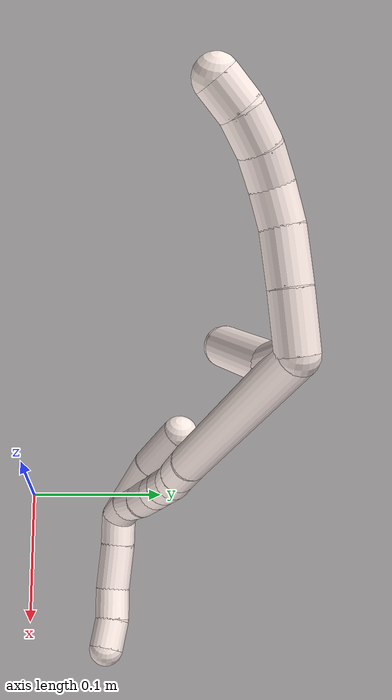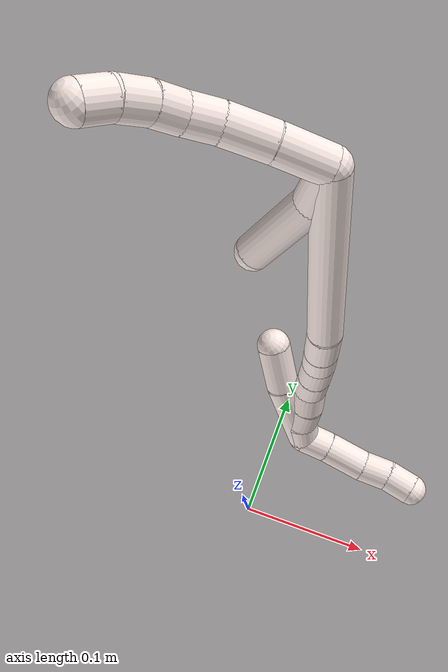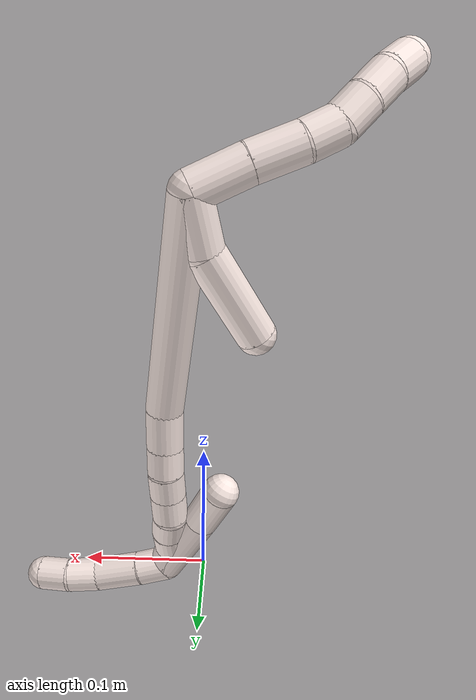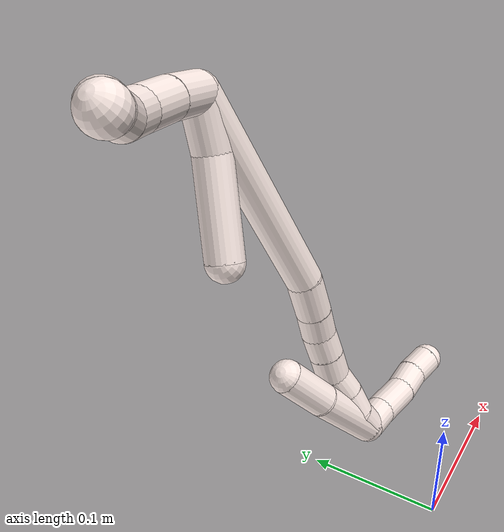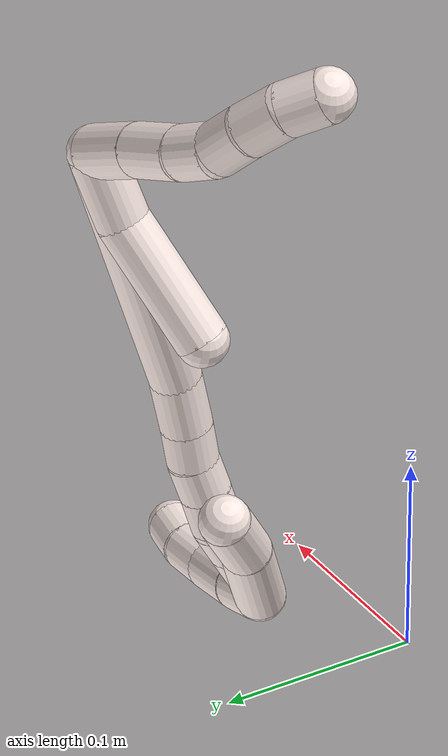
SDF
<sdf version="1.7">
 <world name="default">
  <model name="11">
   <static>0</static>
   <link name="11">
    <collision name="collision-cylinder-e_1_2_8">
     <pose>-0.010458 -0.002604 0.01388 0.185434 -0.637454 -0.061346</pose>
     <geometry><cylinder><radius>0.0125</radius><length>0.035146</length></cylinder></geometry>
     <surface>
      <friction><ode><mu>1.16</mu><mu2>1.16</mu2><slip1>0</slip1><slip2>0</slip2></ode></friction>
      <contact><ode><kp>1e+06</kp><kd>1</kd><max_vel>0</max_vel><min_depth>0.001</min_depth></ode></contact>
     </surface>
    </collision>
    <visual name="visual-cylinder-e_1_2_8">
     <pose>-0.010458 -0.002604 0.01388 0.185434 -0.637454 -0.061346</pose>
     <geometry><cylinder><radius>0.0125</radius><length>0.035146</length></cylinder></geometry>
     <material><ambient>1 0.933333 0.909804 1</ambient></material>
    </visual>
    <collision name="collision-cylinder-e_2_8_9">
     <pose>-0.031045 -0.007659 0.039452 0.206723 -0.703179 -0.076067</pose>
     <geometry><cylinder><radius>0.0125</radius><length>0.031324</length></cylinder></geometry>
     <surface>
      <friction><ode><mu>1.16</mu><mu2>1.16</mu2><slip1>0</slip1><slip2>0</slip2></ode></friction>
      <contact><ode><kp>1e+06</kp><kd>1</kd><max_vel>0</max_vel><min_depth>0.001</min_depth></ode></contact>
     </surface>
    </collision>
    <visual name="visual-cylinder-e_2_8_9">
     <pose>-0.031045 -0.007659 0.039452 0.206723 -0.703179 -0.076067</pose>
     <geometry><cylinder><radius>0.0125</radius><length>0.031324</length></cylinder></geometry>
     <material><ambient>1 0.933333 0.909804 1</ambient></material>
    </visual>
    <collision name="collision-cylinder-e_3_9_10">
     <pose>-0.047467 -0.013282 0.059311 0.370342 -0.62306 -0.120492</pose>
     <geometry><cylinder><radius>0.0125</radius><length>0.021576</length></cylinder></geometry>
     <surface>
      <friction><ode><mu>1.16</mu><mu2>1.16</mu2><slip1>0</slip1><slip2>0</slip2></ode></friction>
      <contact><ode><kp>1e+06</kp><kd>1</kd><max_vel>0</max_vel><min_depth>0.001</min_depth></ode></contact>
     </surface>
    </collision>
    <visual name="visual-cylinder-e_3_9_10">
     <pose>-0.047467 -0.013282 0.059311 0.370342 -0.62306 -0.120492</pose>
     <geometry><cylinder><radius>0.0125</radius><length>0.021576</length></cylinder></geometry>
     <material><ambient>1 0.933333 0.909804 1</ambient></material>
    </visual>
    <collision name="collision-cylinder-e_4_10_11">
     <pose>-0.056591 -0.020478 0.076356 0.425571 -0.28244 -0.061413</pose>
     <geometry><cylinder><radius>0.0125</radius><length>0.020301</length></cylinder></geometry>
     <surface>
      <friction><ode><mu>1.16</mu><mu2>1.16</mu2><slip1>0</slip1><slip2>0</slip2></ode></friction>
      <contact><ode><kp>1e+06</kp><kd>1</kd><max_vel>0</max_vel><min_depth>0.001</min_depth></ode></contact>
     </surface>
    </collision>
    <visual name="visual-cylinder-e_4_10_11">
     <pose>-0.056591 -0.020478 0.076356 0.425571 -0.28244 -0.061413</pose>
     <geometry><cylinder><radius>0.0125</radius><length>0.020301</length></cylinder></geometry>
     <material><ambient>1 0.933333 0.909804 1</ambient></material>
    </visual>
    <collision name="collision-cylinder-e_5_11_12">
     <pose>-0.062484 -0.030219 0.093884 0.584047 -0.287343 -0.086925</pose>
     <geometry><cylinder><radius>0.0125</radius><length>0.021622</length></cylinder></geometry>
     <surface>
      <friction><ode><mu>1.16</mu><mu2>1.16</mu2><slip1>0</slip1><slip2>0</slip2></ode></friction>
      <contact><ode><kp>1e+06</kp><kd>1</kd><max_vel>0</max_vel><min_depth>0.001</min_depth></ode></contact>
     </surface>
    </collision>
    <visual name="visual-cylinder-e_5_11_12">
     <pose>-0.062484 -0.030219 0.093884 0.584047 -0.287343 -0.086925</pose>
     <geometry><cylinder><radius>0.0125</radius><length>0.021622</length></cylinder></geometry>
     <material><ambient>1 0.933333 0.909804 1</ambient></material>
    </visual>
    <collision name="collision-cylinder-e_6_12_6">
     <pose>-0.06928 -0.042624 0.108988 0.803187 -0.381811 -0.163777</pose>
     <geometry><cylinder><radius>0.0125</radius><length>0.020032</length></cylinder></geometry>
     <surface>
      <friction><ode><mu>1.16</mu><mu2>1.16</mu2><slip1>0</slip1><slip2>0</slip2></ode></friction>
      <contact><ode><kp>1e+06</kp><kd>1</kd><max_vel>0</max_vel><min_depth>0.001</min_depth></ode></contact>
     </surface>
    </collision>
    <visual name="visual-cylinder-e_6_12_6">
     <pose>-0.06928 -0.042624 0.108988 0.803187 -0.381811 -0.163777</pose>
     <geometry><cylinder><radius>0.0125</radius><length>0.020032</length></cylinder></geometry>
     <material><ambient>1 0.933333 0.909804 1</ambient></material>
    </visual>
    <collision name="collision-cylinder-e_1_2_13">
     <pose>-0.011786 -0.002851 -0.013172 2.92841 -0.718545 -2.58651</pose>
     <geometry><cylinder><radius>0.0125</radius><length>0.035808</length></cylinder></geometry>
     <surface>
      <friction><ode><mu>1.16</mu><mu2>1.16</mu2><slip1>0</slip1><slip2>0</slip2></ode></friction>
      <contact><ode><kp>1e+06</kp><kd>1</kd><max_vel>0</max_vel><min_depth>0.001</min_depth></ode></contact>
     </surface>
    </collision>
    <visual name="visual-cylinder-e_1_2_13">
     <pose>-0.011786 -0.002851 -0.013172 2.92841 -0.718545 -2.58651</pose>
     <geometry><cylinder><radius>0.0125</radius><length>0.035808</length></cylinder></geometry>
     <material><ambient>1 0.933333 0.909804 1</ambient></material>
    </visual>
    <collision name="collision-cylinder-e_2_13_5">
     <pose>-0.05039 -0.013437 -0.042192 2.6876 -0.989127 -2.33224</pose>
     <geometry><cylinder><radius>0.0125</radius><length>0.064192</length></cylinder></geometry>
     <surface>
      <friction><ode><mu>1.16</mu><mu2>1.16</mu2><slip1>0</slip1><slip2>0</slip2></ode></friction>
      <contact><ode><kp>1e+06</kp><kd>1</kd><max_vel>0</max_vel><min_depth>0.001</min_depth></ode></contact>
     </surface>
    </collision>
    <visual name="visual-cylinder-e_2_13_5">
     <pose>-0.05039 -0.013437 -0.042192 2.6876 -0.989127 -2.33224</pose>
     <geometry><cylinder><radius>0.0125</radius><length>0.064192</length></cylinder></geometry>
     <material><ambient>1 0.933333 0.909804 1</ambient></material>
    </visual>
    <collision name="collision-cylinder-e_1_2_14">
     <pose>-0.027494 -0.017984 -0.067718 2.88201 -0.373941 -1.93369</pose>
     <geometry><cylinder><radius>0.0125</radius><length>0.150534</length></cylinder></geometry>
     <surface>
      <friction><ode><mu>1.16</mu><mu2>1.16</mu2><slip1>0</slip1><slip2>0</slip2></ode></friction>
      <contact><ode><kp>1e+06</kp><kd>1</kd><max_vel>0</max_vel><min_depth>0.001</min_depth></ode></contact>
     </surface>
    </collision>
    <visual name="visual-cylinder-e_1_2_14">
     <pose>-0.027494 -0.017984 -0.067718 2.88201 -0.373941 -1.93369</pose>
     <geometry><cylinder><radius>0.0125</radius><length>0.150534</length></cylinder></geometry>
     <material><ambient>1 0.933333 0.909804 1</ambient></material>
    </visual>
    <collision name="collision-cylinder-e_2_14_15">
     <pose>-0.061855 -0.037473 -0.148014 3.02251 -0.496774 -2.67988</pose>
     <geometry><cylinder><radius>0.0125</radius><length>0.028816</length></cylinder></geometry>
     <surface>
      <friction><ode><mu>1.16</mu><mu2>1.16</mu2><slip1>0</slip1><slip2>0</slip2></ode></friction>
      <contact><ode><kp>1e+06</kp><kd>1</kd><max_vel>0</max_vel><min_depth>0.001</min_depth></ode></contact>
     </surface>
    </collision>
    <visual name="visual-cylinder-e_2_14_15">
     <pose>-0.061855 -0.037473 -0.148014 3.02251 -0.496774 -2.67988</pose>
     <geometry><cylinder><radius>0.0125</radius><length>0.028816</length></cylinder></geometry>
     <material><ambient>1 0.933333 0.909804 1</ambient></material>
    </visual>
    <collision name="collision-cylinder-e_3_15_16">
     <pose>-0.073662 -0.039611 -0.169432 3.0701 -0.508414 -2.86804</pose>
     <geometry><cylinder><radius>0.0125</radius><length>0.020296</length></cylinder></geometry>
     <surface>
      <friction><ode><mu>1.16</mu><mu2>1.16</mu2><slip1>0</slip1><slip2>0</slip2></ode></friction>
      <contact><ode><kp>1e+06</kp><kd>1</kd><max_vel>0</max_vel><min_depth>0.001</min_depth></ode></contact>
     </surface>
    </collision>
    <visual name="visual-cylinder-e_3_15_16">
     <pose>-0.073662 -0.039611 -0.169432 3.0701 -0.508414 -2.86804</pose>
     <geometry><cylinder><radius>0.0125</radius><length>0.020296</length></cylinder></geometry>
     <material><ambient>1 0.933333 0.909804 1</ambient></material>
    </visual>
    <collision name="collision-cylinder-e_4_16_17">
     <pose>-0.083818 -0.042259 -0.186584 2.90377 -0.547759 -2.33738</pose>
     <geometry><cylinder><radius>0.0125</radius><length>0.020031</length></cylinder></geometry>
     <surface>
      <friction><ode><mu>1.16</mu><mu2>1.16</mu2><slip1>0</slip1><slip2>0</slip2></ode></friction>
      <contact><ode><kp>1e+06</kp><kd>1</kd><max_vel>0</max_vel><min_depth>0.001</min_depth></ode></contact>
     </surface>
    </collision>
    <visual name="visual-cylinder-e_4_16_17">
     <pose>-0.083818 -0.042259 -0.186584 2.90377 -0.547759 -2.33738</pose>
     <geometry><cylinder><radius>0.0125</radius><length>0.020031</length></cylinder></geometry>
     <material><ambient>1 0.933333 0.909804 1</ambient></material>
    </visual>
    <collision name="collision-cylinder-e_5_17_18">
     <pose>-0.094392 -0.046019 -0.203326 2.93748 -0.556614 -2.45324</pose>
     <geometry><cylinder><radius>0.0125</radius><length>0.020285</length></cylinder></geometry>
     <surface>
      <friction><ode><mu>1.16</mu><mu2>1.16</mu2><slip1>0</slip1><slip2>0</slip2></ode></friction>
      <contact><ode><kp>1e+06</kp><kd>1</kd><max_vel>0</max_vel><min_depth>0.001</min_depth></ode></contact>
     </surface>
    </collision>
    <visual name="visual-cylinder-e_5_17_18">
     <pose>-0.094392 -0.046019 -0.203326 2.93748 -0.556614 -2.45324</pose>
     <geometry><cylinder><radius>0.0125</radius><length>0.020285</length></cylinder></geometry>
     <material><ambient>1 0.933333 0.909804 1</ambient></material>
    </visual>
    <collision name="collision-cylinder-e_6_18_19">
     <pose>-0.103551 -0.051829 -0.220088 2.68756 -0.389206 -1.41274</pose>
     <geometry><cylinder><radius>0.0125</radius><length>0.020034</length></cylinder></geometry>
     <surface>
      <friction><ode><mu>1.16</mu><mu2>1.16</mu2><slip1>0</slip1><slip2>0</slip2></ode></friction>
      <contact><ode><kp>1e+06</kp><kd>1</kd><max_vel>0</max_vel><min_depth>0.001</min_depth></ode></contact>
     </surface>
    </collision>
    <visual name="visual-cylinder-e_6_18_19">
     <pose>-0.103551 -0.051829 -0.220088 2.68756 -0.389206 -1.41274</pose>
     <geometry><cylinder><radius>0.0125</radius><length>0.020034</length></cylinder></geometry>
     <material><ambient>1 0.933333 0.909804 1</ambient></material>
    </visual>
    <collision name="collision-cylinder-e_7_19_20">
     <pose>-0.112556 -0.059741 -0.236042 2.67434 -0.547178 -1.73492</pose>
     <geometry><cylinder><radius>0.0125</radius><length>0.020002</length></cylinder></geometry>
     <surface>
      <friction><ode><mu>1.16</mu><mu2>1.16</mu2><slip1>0</slip1><slip2>0</slip2></ode></friction>
      <contact><ode><kp>1e+06</kp><kd>1</kd><max_vel>0</max_vel><min_depth>0.001</min_depth></ode></contact>
     </surface>
    </collision>
    <visual name="visual-cylinder-e_7_19_20">
     <pose>-0.112556 -0.059741 -0.236042 2.67434 -0.547178 -1.73492</pose>
     <geometry><cylinder><radius>0.0125</radius><length>0.020002</length></cylinder></geometry>
     <material><ambient>1 0.933333 0.909804 1</ambient></material>
    </visual>
    <collision name="collision-cylinder-e_8_20_1">
     <pose>-0.120203 -0.066359 -0.25296 2.8518 -0.246895 -1.40936</pose>
     <geometry><cylinder><radius>0.0125</radius><length>0.020002</length></cylinder></geometry>
     <surface>
      <friction><ode><mu>1.16</mu><mu2>1.16</mu2><slip1>0</slip1><slip2>0</slip2></ode></friction>
      <contact><ode><kp>1e+06</kp><kd>1</kd><max_vel>0</max_vel><min_depth>0.001</min_depth></ode></contact>
     </surface>
    </collision>
    <visual name="visual-cylinder-e_8_20_1">
     <pose>-0.120203 -0.066359 -0.25296 2.8518 -0.246895 -1.40936</pose>
     <geometry><cylinder><radius>0.0125</radius><length>0.020002</length></cylinder></geometry>
     <material><ambient>1 0.933333 0.909804 1</ambient></material>
    </visual>
    <collision name="collision-cylinder-e_1_1_21">
     <pose>-0.121669 -0.059431 -0.233404 -0.324332 0.032129 -0.005257</pose>
     <geometry><cylinder><radius>0.0125</radius><length>0.060903</length></cylinder></geometry>
     <surface>
      <friction><ode><mu>1.16</mu><mu2>1.16</mu2><slip1>0</slip1><slip2>0</slip2></ode></friction>
      <contact><ode><kp>1e+06</kp><kd>1</kd><max_vel>0</max_vel><min_depth>0.001</min_depth></ode></contact>
     </surface>
    </collision>
    <visual name="visual-cylinder-e_1_1_21">
     <pose>-0.121669 -0.059431 -0.233404 -0.324332 0.032129 -0.005257</pose>
     <geometry><cylinder><radius>0.0125</radius><length>0.060903</length></cylinder></geometry>
     <material><ambient>1 0.933333 0.909804 1</ambient></material>
    </visual>
    <collision name="collision-cylinder-e_2_21_4">
     <pose>-0.118656 -0.041362 -0.187007 -0.445053 0.104285 -0.023617</pose>
     <geometry><cylinder><radius>0.0125</radius><length>0.039097</length></cylinder></geometry>
     <surface>
      <friction><ode><mu>1.16</mu><mu2>1.16</mu2><slip1>0</slip1><slip2>0</slip2></ode></friction>
      <contact><ode><kp>1e+06</kp><kd>1</kd><max_vel>0</max_vel><min_depth>0.001</min_depth></ode></contact>
     </surface>
    </collision>
    <visual name="visual-cylinder-e_2_21_4">
     <pose>-0.118656 -0.041362 -0.187007 -0.445053 0.104285 -0.023617</pose>
     <geometry><cylinder><radius>0.0125</radius><length>0.039097</length></cylinder></geometry>
     <material><ambient>1 0.933333 0.909804 1</ambient></material>
    </visual>
    <collision name="collision-cylinder-e_1_1_22">
     <pose>-0.115054 -0.069371 -0.269921 3.11024 0.780248 3.06537</pose>
     <geometry><cylinder><radius>0.0125</radius><length>0.021587</length></cylinder></geometry>
     <surface>
      <friction><ode><mu>1.16</mu><mu2>1.16</mu2><slip1>0</slip1><slip2>0</slip2></ode></friction>
      <contact><ode><kp>1e+06</kp><kd>1</kd><max_vel>0</max_vel><min_depth>0.001</min_depth></ode></contact>
     </surface>
    </collision>
    <visual name="visual-cylinder-e_1_1_22">
     <pose>-0.115054 -0.069371 -0.269921 3.11024 0.780248 3.06537</pose>
     <geometry><cylinder><radius>0.0125</radius><length>0.021587</length></cylinder></geometry>
     <material><ambient>1 0.933333 0.909804 1</ambient></material>
    </visual>
    <collision name="collision-cylinder-e_2_22_23">
     <pose>-0.095498 -0.071381 -0.289219 2.99063 0.793798 2.78459</pose>
     <geometry><cylinder><radius>0.0125</radius><length>0.033558</length></cylinder></geometry>
     <surface>
      <friction><ode><mu>1.16</mu><mu2>1.16</mu2><slip1>0</slip1><slip2>0</slip2></ode></friction>
      <contact><ode><kp>1e+06</kp><kd>1</kd><max_vel>0</max_vel><min_depth>0.001</min_depth></ode></contact>
     </surface>
    </collision>
    <visual name="visual-cylinder-e_2_22_23">
     <pose>-0.095498 -0.071381 -0.289219 2.99063 0.793798 2.78459</pose>
     <geometry><cylinder><radius>0.0125</radius><length>0.033558</length></cylinder></geometry>
     <material><ambient>1 0.933333 0.909804 1</ambient></material>
    </visual>
    <collision name="collision-cylinder-e_3_23_24">
     <pose>-0.074118 -0.073433 -0.307345 3.09806 0.966469 3.05867</pose>
     <geometry><cylinder><radius>0.0125</radius><length>0.022884</length></cylinder></geometry>
     <surface>
      <friction><ode><mu>1.16</mu><mu2>1.16</mu2><slip1>0</slip1><slip2>0</slip2></ode></friction>
      <contact><ode><kp>1e+06</kp><kd>1</kd><max_vel>0</max_vel><min_depth>0.001</min_depth></ode></contact>
     </surface>
    </collision>
    <visual name="visual-cylinder-e_3_23_24">
     <pose>-0.074118 -0.073433 -0.307345 3.09806 0.966469 3.05867</pose>
     <geometry><cylinder><radius>0.0125</radius><length>0.022884</length></cylinder></geometry>
     <material><ambient>1 0.933333 0.909804 1</ambient></material>
    </visual>
    <collision name="collision-cylinder-e_4_24_3">
     <pose>-0.055784 -0.076058 -0.319811 2.76773 0.947364 2.43464</pose>
     <geometry><cylinder><radius>0.0125</radius><length>0.021971</length></cylinder></geometry>
     <surface>
      <friction><ode><mu>1.16</mu><mu2>1.16</mu2><slip1>0</slip1><slip2>0</slip2></ode></friction>
      <contact><ode><kp>1e+06</kp><kd>1</kd><max_vel>0</max_vel><min_depth>0.001</min_depth></ode></contact>
     </surface>
    </collision>
    <visual name="visual-cylinder-e_4_24_3">
     <pose>-0.055784 -0.076058 -0.319811 2.76773 0.947364 2.43464</pose>
     <geometry><cylinder><radius>0.0125</radius><length>0.021971</length></cylinder></geometry>
     <material><ambient>1 0.933333 0.909804 1</ambient></material>
    </visual>
    <collision name="collision-sphere-3">
     <pose>-0.046865 -0.0784 -0.325781 0 -0 0</pose>
     <geometry><sphere><radius>0.0125</radius></sphere></geometry>
     <surface>
      <friction><ode><mu>1.16</mu><mu2>1.16</mu2><slip1>0</slip1><slip2>0</slip2></ode></friction>
      <contact><ode><kp>1e+06</kp><kd>1</kd><max_vel>0</max_vel><min_depth>0.001</min_depth></ode></contact>
     </surface>
    </collision>
    <visual name="visual-sphere-3">
     <pose>-0.046865 -0.0784 -0.325781 0 -0 0</pose>
     <geometry><sphere><radius>0.0125</radius></sphere></geometry>
     <material><ambient>1 0.933333 0.909804 1</ambient></material>
    </visual>
    <collision name="collision-sphere-24">
     <pose>-0.064703 -0.073716 -0.313841 0 -0 0</pose>
     <geometry><sphere><radius>0.0125</radius></sphere></geometry>
     <surface>
      <friction><ode><mu>1.16</mu><mu2>1.16</mu2><slip1>0</slip1><slip2>0</slip2></ode></friction>
      <contact><ode><kp>1e+06</kp><kd>1</kd><max_vel>0</max_vel><min_depth>0.001</min_depth></ode></contact>
     </surface>
    </collision>
    <visual name="visual-sphere-24">
     <pose>-0.064703 -0.073716 -0.313841 0 -0 0</pose>
     <geometry><sphere><radius>0.0125</radius></sphere></geometry>
     <material><ambient>1 0.933333 0.909804 1</ambient></material>
    </visual>
    <collision name="collision-sphere-23">
     <pose>-0.083534 -0.07315 -0.30085 0 -0 0</pose>
     <geometry><sphere><radius>0.0125</radius></sphere></geometry>
     <surface>
      <friction><ode><mu>1.16</mu><mu2>1.16</mu2><slip1>0</slip1><slip2>0</slip2></ode></friction>
      <contact><ode><kp>1e+06</kp><kd>1</kd><max_vel>0</max_vel><min_depth>0.001</min_depth></ode></contact>
     </surface>
    </collision>
    <visual name="visual-sphere-23">
     <pose>-0.083534 -0.07315 -0.30085 0 -0 0</pose>
     <geometry><sphere><radius>0.0125</radius></sphere></geometry>
     <material><ambient>1 0.933333 0.909804 1</ambient></material>
    </visual>
    <collision name="collision-sphere-22">
     <pose>-0.107461 -0.069611 -0.277588 0 -0 0</pose>
     <geometry><sphere><radius>0.0125</radius></sphere></geometry>
     <surface>
      <friction><ode><mu>1.16</mu><mu2>1.16</mu2><slip1>0</slip1><slip2>0</slip2></ode></friction>
      <contact><ode><kp>1e+06</kp><kd>1</kd><max_vel>0</max_vel><min_depth>0.001</min_depth></ode></contact>
     </surface>
    </collision>
    <visual name="visual-sphere-22">
     <pose>-0.107461 -0.069611 -0.277588 0 -0 0</pose>
     <geometry><sphere><radius>0.0125</radius></sphere></geometry>
     <material><ambient>1 0.933333 0.909804 1</ambient></material>
    </visual>
    <collision name="collision-sphere-4">
     <pose>-0.116621 -0.032992 -0.169458 0 -0 0</pose>
     <geometry><sphere><radius>0.0125</radius></sphere></geometry>
     <surface>
      <friction><ode><mu>1.16</mu><mu2>1.16</mu2><slip1>0</slip1><slip2>0</slip2></ode></friction>
      <contact><ode><kp>1e+06</kp><kd>1</kd><max_vel>0</max_vel><min_depth>0.001</min_depth></ode></contact>
     </surface>
    </collision>
    <visual name="visual-sphere-4">
     <pose>-0.116621 -0.032992 -0.169458 0 -0 0</pose>
     <geometry><sphere><radius>0.0125</radius></sphere></geometry>
     <material><ambient>1 0.933333 0.909804 1</ambient></material>
    </visual>
    <collision name="collision-sphere-21">
     <pose>-0.120691 -0.049732 -0.204555 0 -0 0</pose>
     <geometry><sphere><radius>0.0125</radius></sphere></geometry>
     <surface>
      <friction><ode><mu>1.16</mu><mu2>1.16</mu2><slip1>0</slip1><slip2>0</slip2></ode></friction>
      <contact><ode><kp>1e+06</kp><kd>1</kd><max_vel>0</max_vel><min_depth>0.001</min_depth></ode></contact>
     </surface>
    </collision>
    <visual name="visual-sphere-21">
     <pose>-0.120691 -0.049732 -0.204555 0 -0 0</pose>
     <geometry><sphere><radius>0.0125</radius></sphere></geometry>
     <material><ambient>1 0.933333 0.909804 1</ambient></material>
    </visual>
    <collision name="collision-sphere-1">
     <pose>-0.122647 -0.06913 -0.262253 0 -0 0</pose>
     <geometry><sphere><radius>0.0125</radius></sphere></geometry>
     <surface>
      <friction><ode><mu>1.16</mu><mu2>1.16</mu2><slip1>0</slip1><slip2>0</slip2></ode></friction>
      <contact><ode><kp>1e+06</kp><kd>1</kd><max_vel>0</max_vel><min_depth>0.001</min_depth></ode></contact>
     </surface>
    </collision>
    <visual name="visual-sphere-1">
     <pose>-0.122647 -0.06913 -0.262253 0 -0 0</pose>
     <geometry><sphere><radius>0.0125</radius></sphere></geometry>
     <material><ambient>1 0.933333 0.909804 1</ambient></material>
    </visual>
    <collision name="collision-sphere-12">
     <pose>-0.065548 -0.035936 0.102533 0 -0 0</pose>
     <geometry><sphere><radius>0.0125</radius></sphere></geometry>
     <surface>
      <friction><ode><mu>1.16</mu><mu2>1.16</mu2><slip1>0</slip1><slip2>0</slip2></ode></friction>
      <contact><ode><kp>1e+06</kp><kd>1</kd><max_vel>0</max_vel><min_depth>0.001</min_depth></ode></contact>
     </surface>
    </collision>
    <visual name="visual-sphere-12">
     <pose>-0.065548 -0.035936 0.102533 0 -0 0</pose>
     <geometry><sphere><radius>0.0125</radius></sphere></geometry>
     <material><ambient>1 0.933333 0.909804 1</ambient></material>
    </visual>
    <collision name="collision-sphere-11">
     <pose>-0.05942 -0.024502 0.085235 0 -0 0</pose>
     <geometry><sphere><radius>0.0125</radius></sphere></geometry>
     <surface>
      <friction><ode><mu>1.16</mu><mu2>1.16</mu2><slip1>0</slip1><slip2>0</slip2></ode></friction>
      <contact><ode><kp>1e+06</kp><kd>1</kd><max_vel>0</max_vel><min_depth>0.001</min_depth></ode></contact>
     </surface>
    </collision>
    <visual name="visual-sphere-11">
     <pose>-0.05942 -0.024502 0.085235 0 -0 0</pose>
     <geometry><sphere><radius>0.0125</radius></sphere></geometry>
     <material><ambient>1 0.933333 0.909804 1</ambient></material>
    </visual>
    <collision name="collision-sphere-10">
     <pose>-0.053762 -0.016453 0.067478 0 -0 0</pose>
     <geometry><sphere><radius>0.0125</radius></sphere></geometry>
     <surface>
      <friction><ode><mu>1.16</mu><mu2>1.16</mu2><slip1>0</slip1><slip2>0</slip2></ode></friction>
      <contact><ode><kp>1e+06</kp><kd>1</kd><max_vel>0</max_vel><min_depth>0.001</min_depth></ode></contact>
     </surface>
    </collision>
    <visual name="visual-sphere-10">
     <pose>-0.053762 -0.016453 0.067478 0 -0 0</pose>
     <geometry><sphere><radius>0.0125</radius></sphere></geometry>
     <material><ambient>1 0.933333 0.909804 1</ambient></material>
    </visual>
    <collision name="collision-sphere-9">
     <pose>-0.041172 -0.010112 0.051144 0 -0 0</pose>
     <geometry><sphere><radius>0.0125</radius></sphere></geometry>
     <surface>
      <friction><ode><mu>1.16</mu><mu2>1.16</mu2><slip1>0</slip1><slip2>0</slip2></ode></friction>
      <contact><ode><kp>1e+06</kp><kd>1</kd><max_vel>0</max_vel><min_depth>0.001</min_depth></ode></contact>
     </surface>
    </collision>
    <visual name="visual-sphere-9">
     <pose>-0.041172 -0.010112 0.051144 0 -0 0</pose>
     <geometry><sphere><radius>0.0125</radius></sphere></geometry>
     <material><ambient>1 0.933333 0.909804 1</ambient></material>
    </visual>
    <collision name="collision-sphere-2">
     <geometry><sphere><radius>0.0125</radius></sphere></geometry>
     <surface>
      <friction><ode><mu>1.16</mu><mu2>1.16</mu2><slip1>0</slip1><slip2>0</slip2></ode></friction>
      <contact><ode><kp>1e+06</kp><kd>1</kd><max_vel>0</max_vel><min_depth>0.001</min_depth></ode></contact>
     </surface>
    </collision>
    <visual name="visual-sphere-2">
     <geometry><sphere><radius>0.0125</radius></sphere></geometry>
     <material><ambient>1 0.933333 0.909804 1</ambient></material>
    </visual>
    <collision name="collision-sphere-19">
     <pose>-0.107352 -0.055894 -0.228416 0 -0 0</pose>
     <geometry><sphere><radius>0.0125</radius></sphere></geometry>
     <surface>
      <friction><ode><mu>1.16</mu><mu2>1.16</mu2><slip1>0</slip1><slip2>0</slip2></ode></friction>
      <contact><ode><kp>1e+06</kp><kd>1</kd><max_vel>0</max_vel><min_depth>0.001</min_depth></ode></contact>
     </surface>
    </collision>
    <visual name="visual-sphere-19">
     <pose>-0.107352 -0.055894 -0.228416 0 -0 0</pose>
     <geometry><sphere><radius>0.0125</radius></sphere></geometry>
     <material><ambient>1 0.933333 0.909804 1</ambient></material>
    </visual>
    <collision name="collision-sphere-8">
     <pose>-0.020917 -0.005207 0.027759 0 -0 0</pose>
     <geometry><sphere><radius>0.0125</radius></sphere></geometry>
     <surface>
      <friction><ode><mu>1.16</mu><mu2>1.16</mu2><slip1>0</slip1><slip2>0</slip2></ode></friction>
      <contact><ode><kp>1e+06</kp><kd>1</kd><max_vel>0</max_vel><min_depth>0.001</min_depth></ode></contact>
     </surface>
    </collision>
    <visual name="visual-sphere-8">
     <pose>-0.020917 -0.005207 0.027759 0 -0 0</pose>
     <geometry><sphere><radius>0.0125</radius></sphere></geometry>
     <material><ambient>1 0.933333 0.909804 1</ambient></material>
    </visual>
    <collision name="collision-sphere-6">
     <pose>-0.073012 -0.049312 0.115442 0 -0 0</pose>
     <geometry><sphere><radius>0.0125</radius></sphere></geometry>
     <surface>
      <friction><ode><mu>1.16</mu><mu2>1.16</mu2><slip1>0</slip1><slip2>0</slip2></ode></friction>
      <contact><ode><kp>1e+06</kp><kd>1</kd><max_vel>0</max_vel><min_depth>0.001</min_depth></ode></contact>
     </surface>
    </collision>
    <visual name="visual-sphere-6">
     <pose>-0.073012 -0.049312 0.115442 0 -0 0</pose>
     <geometry><sphere><radius>0.0125</radius></sphere></geometry>
     <material><ambient>1 0.933333 0.909804 1</ambient></material>
    </visual>
    <collision name="collision-sphere-13">
     <pose>-0.023572 -0.005703 -0.026344 0 -0 0</pose>
     <geometry><sphere><radius>0.0125</radius></sphere></geometry>
     <surface>
      <friction><ode><mu>1.16</mu><mu2>1.16</mu2><slip1>0</slip1><slip2>0</slip2></ode></friction>
      <contact><ode><kp>1e+06</kp><kd>1</kd><max_vel>0</max_vel><min_depth>0.001</min_depth></ode></contact>
     </surface>
    </collision>
    <visual name="visual-sphere-13">
     <pose>-0.023572 -0.005703 -0.026344 0 -0 0</pose>
     <geometry><sphere><radius>0.0125</radius></sphere></geometry>
     <material><ambient>1 0.933333 0.909804 1</ambient></material>
    </visual>
    <collision name="collision-sphere-5">
     <pose>-0.077208 -0.02117 -0.05804 0 -0 0</pose>
     <geometry><sphere><radius>0.0125</radius></sphere></geometry>
     <surface>
      <friction><ode><mu>1.16</mu><mu2>1.16</mu2><slip1>0</slip1><slip2>0</slip2></ode></friction>
      <contact><ode><kp>1e+06</kp><kd>1</kd><max_vel>0</max_vel><min_depth>0.001</min_depth></ode></contact>
     </surface>
    </collision>
    <visual name="visual-sphere-5">
     <pose>-0.077208 -0.02117 -0.05804 0 -0 0</pose>
     <geometry><sphere><radius>0.0125</radius></sphere></geometry>
     <material><ambient>1 0.933333 0.909804 1</ambient></material>
    </visual>
    <collision name="collision-sphere-14">
     <pose>-0.054988 -0.035969 -0.135437 0 -0 0</pose>
     <geometry><sphere><radius>0.0125</radius></sphere></geometry>
     <surface>
      <friction><ode><mu>1.16</mu><mu2>1.16</mu2><slip1>0</slip1><slip2>0</slip2></ode></friction>
      <contact><ode><kp>1e+06</kp><kd>1</kd><max_vel>0</max_vel><min_depth>0.001</min_depth></ode></contact>
     </surface>
    </collision>
    <visual name="visual-sphere-14">
     <pose>-0.054988 -0.035969 -0.135437 0 -0 0</pose>
     <geometry><sphere><radius>0.0125</radius></sphere></geometry>
     <material><ambient>1 0.933333 0.909804 1</ambient></material>
    </visual>
    <collision name="collision-sphere-15">
     <pose>-0.068722 -0.038978 -0.16059 0 -0 0</pose>
     <geometry><sphere><radius>0.0125</radius></sphere></geometry>
     <surface>
      <friction><ode><mu>1.16</mu><mu2>1.16</mu2><slip1>0</slip1><slip2>0</slip2></ode></friction>
      <contact><ode><kp>1e+06</kp><kd>1</kd><max_vel>0</max_vel><min_depth>0.001</min_depth></ode></contact>
     </surface>
    </collision>
    <visual name="visual-sphere-15">
     <pose>-0.068722 -0.038978 -0.16059 0 -0 0</pose>
     <geometry><sphere><radius>0.0125</radius></sphere></geometry>
     <material><ambient>1 0.933333 0.909804 1</ambient></material>
    </visual>
    <collision name="collision-sphere-16">
     <pose>-0.078602 -0.040245 -0.178274 0 -0 0</pose>
     <geometry><sphere><radius>0.0125</radius></sphere></geometry>
     <surface>
      <friction><ode><mu>1.16</mu><mu2>1.16</mu2><slip1>0</slip1><slip2>0</slip2></ode></friction>
      <contact><ode><kp>1e+06</kp><kd>1</kd><max_vel>0</max_vel><min_depth>0.001</min_depth></ode></contact>
     </surface>
    </collision>
    <visual name="visual-sphere-16">
     <pose>-0.078602 -0.040245 -0.178274 0 -0 0</pose>
     <geometry><sphere><radius>0.0125</radius></sphere></geometry>
     <material><ambient>1 0.933333 0.909804 1</ambient></material>
    </visual>
    <collision name="collision-sphere-17">
     <pose>-0.089033 -0.044273 -0.194893 0 -0 0</pose>
     <geometry><sphere><radius>0.0125</radius></sphere></geometry>
     <surface>
      <friction><ode><mu>1.16</mu><mu2>1.16</mu2><slip1>0</slip1><slip2>0</slip2></ode></friction>
      <contact><ode><kp>1e+06</kp><kd>1</kd><max_vel>0</max_vel><min_depth>0.001</min_depth></ode></contact>
     </surface>
    </collision>
    <visual name="visual-sphere-17">
     <pose>-0.089033 -0.044273 -0.194893 0 -0 0</pose>
     <geometry><sphere><radius>0.0125</radius></sphere></geometry>
     <material><ambient>1 0.933333 0.909804 1</ambient></material>
    </visual>
    <collision name="collision-sphere-18">
     <pose>-0.099751 -0.047765 -0.211759 0 -0 0</pose>
     <geometry><sphere><radius>0.0125</radius></sphere></geometry>
     <surface>
      <friction><ode><mu>1.16</mu><mu2>1.16</mu2><slip1>0</slip1><slip2>0</slip2></ode></friction>
      <contact><ode><kp>1e+06</kp><kd>1</kd><max_vel>0</max_vel><min_depth>0.001</min_depth></ode></contact>
     </surface>
    </collision>
    <visual name="visual-sphere-18">
     <pose>-0.099751 -0.047765 -0.211759 0 -0 0</pose>
     <geometry><sphere><radius>0.0125</radius></sphere></geometry>
     <material><ambient>1 0.933333 0.909804 1</ambient></material>
    </visual>
    <collision name="collision-sphere-20">
     <pose>-0.117759 -0.063588 -0.243667 0 -0 0</pose>
     <geometry><sphere><radius>0.0125</radius></sphere></geometry>
     <surface>
      <friction><ode><mu>1.16</mu><mu2>1.16</mu2><slip1>0</slip1><slip2>0</slip2></ode></friction>
      <contact><ode><kp>1e+06</kp><kd>1</kd><max_vel>0</max_vel><min_depth>0.001</min_depth></ode></contact>
     </surface>
    </collision>
    <visual name="visual-sphere-20">
     <pose>-0.117759 -0.063588 -0.243667 0 -0 0</pose>
     <geometry><sphere><radius>0.0125</radius></sphere></geometry>
     <material><ambient>1 0.933333 0.909804 1</ambient></material>
    </visual>
    <inertial>
     <pose>-0.06441 -0.034558 -0.113976 0 -0 0</pose>
     <mass>0.75</mass>
     <inertia>
      <ixx>-0.000365</ixx>
      <ixy>0</ixy>
      <ixz>0</ixz>
      <iyy>-7.2e-05</iyy>
      <iyz>0</iyz>
      <izz>0.000195</izz>
     </inertia>
    </inertial>
   </link>
   <pose>0.00054 0.167812 0.315674 -0.125999 -0.509802 0.085464</pose>
  </model>
 </world>
</sdf>
